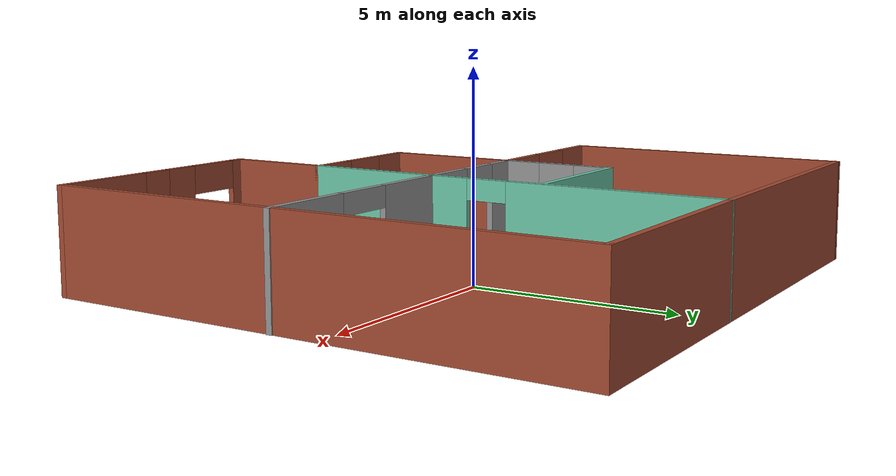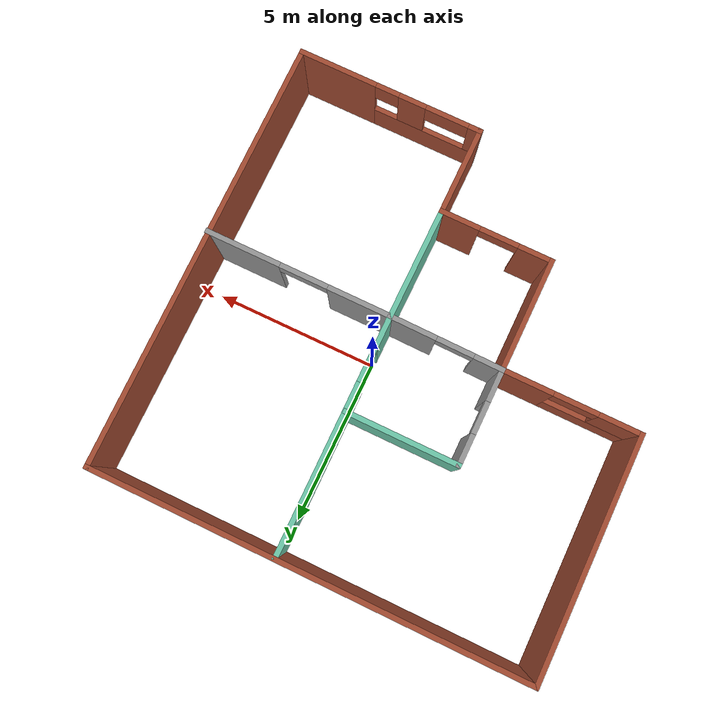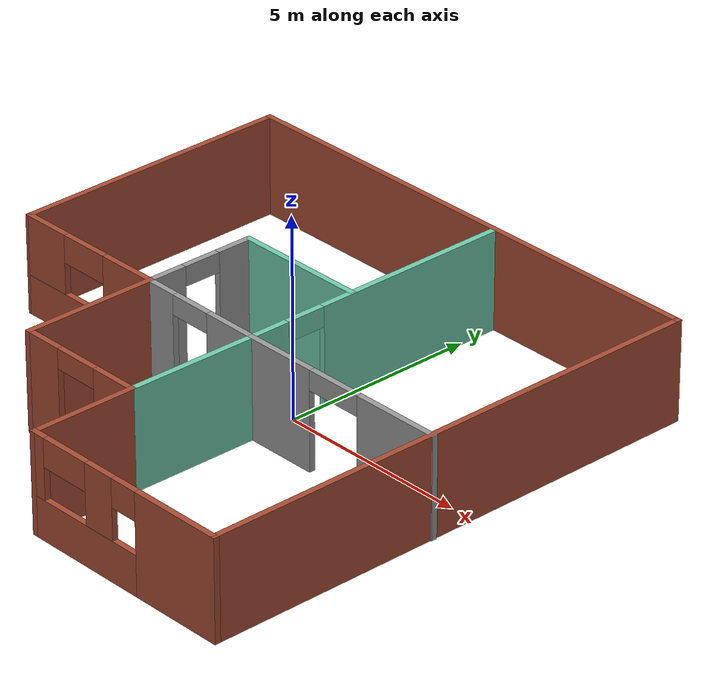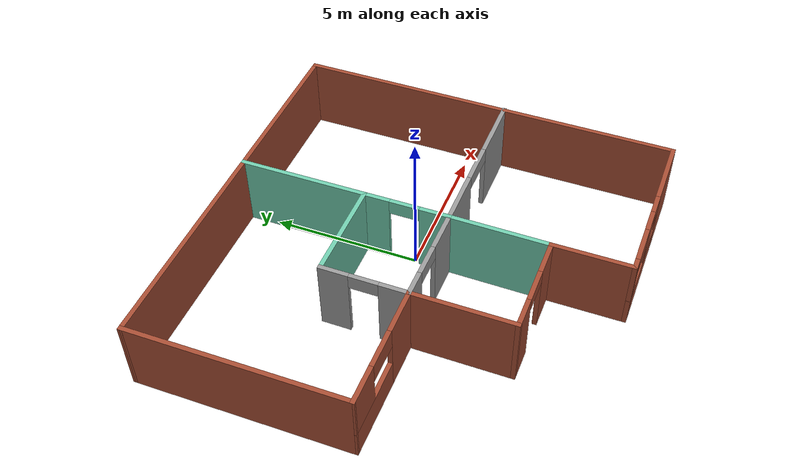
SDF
<?xml version='1.0'?>
<sdf version='1.6'>
  <model name='building_1floor'>
    <pose frame=''>-0.973705 -0.510274 0 0 -0 0</pose>
    <link name='Wall_0'>
      <collision name='Wall_0_Collision'>
        <geometry>
          <box>
            <size>13.25 0.15 2.5</size>
          </box>
        </geometry>
        <pose frame=''>0 0 1.25 0 -0 0</pose>
      </collision>
      <visual name='Wall_0_Visual'>
        <pose frame=''>0 0 1.25 0 -0 0</pose>
        <geometry>
          <box>
            <size>13.25 0.15 2.5</size>
          </box>
        </geometry>
        <material>
          <script>
            <uri>file://media/materials/scripts/gazebo.material</uri>
            <name>Gazebo/Bricks</name>
          </script>
          <ambient>1 1 1 1</ambient>
        </material>
        <meta>
          <layer>0</layer>
        </meta>
      </visual>
      <pose frame=''>-0.013373 6.54974 0 0 -0 0</pose>
    </link>
    <link name='Wall_1'>
      <collision name='Wall_1_Collision'>
        <geometry>
          <box>
            <size>13.25 0.15 2.5</size>
          </box>
        </geometry>
        <pose frame=''>0 0 1.25 0 -0 0</pose>
      </collision>
      <visual name='Wall_1_Visual'>
        <pose frame=''>0 0 1.25 0 -0 0</pose>
        <geometry>
          <box>
            <size>13.25 0.15 2.5</size>
          </box>
        </geometry>
        <material>
          <script>
            <uri>file://media/materials/scripts/gazebo.material</uri>
            <name>Gazebo/Bricks</name>
          </script>
          <ambient>1 1 1 1</ambient>
        </material>
        <meta>
          <layer>0</layer>
        </meta>
      </visual>
      <pose frame=''>6.53663 -0.000261 0 0 -0 -1.5708</pose>
    </link>
    <link name='Wall_11'>
      <pose frame=''>0.952525 2.95666 0 0 -0 -1.56763</pose>
      <visual name='Wall_11_Visual_0'>
        <pose frame=''>-1.04133 0 1.25 0 -0 0</pose>
        <geometry>
          <box>
            <size>5.25349 0.15 2.5</size>
          </box>
        </geometry>
        <material>
          <script>
            <uri>file://media/materials/scripts/gazebo.material</uri>
            <name>Gazebo/Grey</name>
          </script>
          <ambient>0.435294 0.796078 0.67451 1</ambient>
        </material>
        <meta>
          <layer>0</layer>
        </meta>
      </visual>
      <collision name='Wall_11_Collision_0'>
        <geometry>
          <box>
            <size>5.25349 0.15 2.5</size>
          </box>
        </geometry>
        <pose frame=''>-1.04133 0 1.25 0 -0 0</pose>
      </collision>
      <visual name='Wall_11_Visual_1'>
        <pose frame=''>3.13356 0 1.25 0 -0 0</pose>
        <geometry>
          <box>
            <size>1.06903 0.15 2.5</size>
          </box>
        </geometry>
        <material>
          <script>
            <uri>file://media/materials/scripts/gazebo.material</uri>
            <name>Gazebo/Grey</name>
          </script>
          <ambient>0.435294 0.796078 0.67451 1</ambient>
        </material>
        <meta>
          <layer>0</layer>
        </meta>
      </visual>
      <collision name='Wall_11_Collision_1'>
        <geometry>
          <box>
            <size>1.06903 0.15 2.5</size>
          </box>
        </geometry>
        <pose frame=''>3.13356 0 1.25 0 -0 0</pose>
      </collision>
      <visual name='Wall_11_Visual_2'>
        <pose frame=''>2.09223 0 2.25 0 -0 0</pose>
        <geometry>
          <box>
            <size>1.01363 0.15 0.5</size>
          </box>
        </geometry>
        <material>
          <script>
            <uri>file://media/materials/scripts/gazebo.material</uri>
            <name>Gazebo/Grey</name>
          </script>
          <ambient>0.435294 0.796078 0.67451 1</ambient>
        </material>
        <meta>
          <layer>0</layer>
        </meta>
      </visual>
      <collision name='Wall_11_Collision_2'>
        <geometry>
          <box>
            <size>1.01363 0.15 0.5</size>
          </box>
        </geometry>
        <pose frame=''>2.09223 0 2.25 0 -0 0</pose>
      </collision>
    </link>
    <link name='Wall_12'>
      <pose frame=''>-0.724738 -0.618338 0 0 -0 3.13089</pose>
      <visual name='Wall_12_Visual_0'>
        <pose frame=''>-1.02459 0 1.25 0 -0 0</pose>
        <geometry>
          <box>
            <size>1.47829 0.15 2.5</size>
          </box>
        </geometry>
        <material>
          <script>
            <uri>file://media/materials/scripts/gazebo.material</uri>
            <name>Gazebo/Grey</name>
          </script>
          <ambient>1 1 1 1</ambient>
        </material>
        <meta>
          <layer>0</layer>
        </meta>
      </visual>
      <collision name='Wall_12_Collision_0'>
        <geometry>
          <box>
            <size>1.47829 0.15 2.5</size>
          </box>
        </geometry>
        <pose frame=''>-1.02459 0 1.25 0 -0 0</pose>
      </collision>
      <visual name='Wall_12_Visual_1'>
        <pose frame=''>1.3026 0 1.25 0 -0 0</pose>
        <geometry>
          <box>
            <size>0.922267 0.15 2.5</size>
          </box>
        </geometry>
        <material>
          <script>
            <uri>file://media/materials/scripts/gazebo.material</uri>
            <name>Gazebo/Grey</name>
          </script>
          <ambient>1 1 1 1</ambient>
        </material>
        <meta>
          <layer>0</layer>
        </meta>
      </visual>
      <collision name='Wall_12_Collision_1'>
        <geometry>
          <box>
            <size>0.922267 0.15 2.5</size>
          </box>
        </geometry>
        <pose frame=''>1.3026 0 1.25 0 -0 0</pose>
      </collision>
      <visual name='Wall_12_Visual_2'>
        <pose frame=''>0.278009 0 2.25 0 -0 0</pose>
        <geometry>
          <box>
            <size>1.12691 0.15 0.5</size>
          </box>
        </geometry>
        <material>
          <script>
            <uri>file://media/materials/scripts/gazebo.material</uri>
            <name>Gazebo/Grey</name>
          </script>
          <ambient>1 1 1 1</ambient>
        </material>
        <meta>
          <layer>0</layer>
        </meta>
      </visual>
      <collision name='Wall_12_Collision_2'>
        <geometry>
          <box>
            <size>1.12691 0.15 0.5</size>
          </box>
        </geometry>
        <pose frame=''>0.278009 0 2.25 0 -0 0</pose>
      </collision>
    </link>
    <link name='Wall_13'>
      <pose frame=''>-2.41337 0.824739 0 0 -0 1.5708</pose>
      <visual name='Wall_13_Visual_0'>
        <pose frame=''>-0.98355 0 1.25 0 -0 0</pose>
        <geometry>
          <box>
            <size>1.0329 0.15 2.5</size>
          </box>
        </geometry>
        <material>
          <script>
            <uri>file://media/materials/scripts/gazebo.material</uri>
            <name>Gazebo/Grey</name>
          </script>
          <ambient>1 1 1 1</ambient>
        </material>
        <meta>
          <layer>0</layer>
        </meta>
      </visual>
      <collision name='Wall_13_Collision_0'>
        <geometry>
          <box>
            <size>1.0329 0.15 2.5</size>
          </box>
        </geometry>
        <pose frame=''>-0.98355 0 1.25 0 -0 0</pose>
      </collision>
      <visual name='Wall_13_Visual_1'>
        <pose frame=''>1.00056 0 1.25 0 -0 0</pose>
        <geometry>
          <box>
            <size>0.998878 0.15 2.5</size>
          </box>
        </geometry>
        <material>
          <script>
            <uri>file://media/materials/scripts/gazebo.material</uri>
            <name>Gazebo/Grey</name>
          </script>
          <ambient>1 1 1 1</ambient>
        </material>
        <meta>
          <layer>0</layer>
        </meta>
      </visual>
      <collision name='Wall_13_Collision_1'>
        <geometry>
          <box>
            <size>0.998878 0.15 2.5</size>
          </box>
        </geometry>
        <pose frame=''>1.00056 0 1.25 0 -0 0</pose>
      </collision>
      <visual name='Wall_13_Visual_2'>
        <pose frame=''>0.017011 0 2.25 0 -0 0</pose>
        <geometry>
          <box>
            <size>0.968223 0.15 0.5</size>
          </box>
        </geometry>
        <material>
          <script>
            <uri>file://media/materials/scripts/gazebo.material</uri>
            <name>Gazebo/Grey</name>
          </script>
          <ambient>1 1 1 1</ambient>
        </material>
        <meta>
          <layer>0</layer>
        </meta>
      </visual>
      <collision name='Wall_13_Collision_2'>
        <geometry>
          <box>
            <size>0.968223 0.15 0.5</size>
          </box>
        </geometry>
        <pose frame=''>0.017011 0 2.25 0 -0 0</pose>
      </collision>
    </link>
    <link name='Wall_14'>
      <collision name='Wall_14_Collision'>
        <geometry>
          <box>
            <size>3.5 0.15 2.5</size>
          </box>
        </geometry>
        <pose frame=''>0 0 1.25 0 -0 0</pose>
      </collision>
      <visual name='Wall_14_Visual'>
        <pose frame=''>0 0 1.25 0 -0 0</pose>
        <geometry>
          <box>
            <size>3.5 0.15 2.5</size>
          </box>
        </geometry>
        <material>
          <script>
            <uri>file://media/materials/scripts/gazebo.material</uri>
            <name>Gazebo/Grey</name>
          </script>
          <ambient>0.435294 0.796078 0.67451 1</ambient>
        </material>
        <meta>
          <layer>0</layer>
        </meta>
      </visual>
      <pose frame=''>-0.738373 2.24974 0 0 -0 0</pose>
    </link>
    <link name='Wall_16'>
      <collision name='Wall_16_Collision'>
        <geometry>
          <box>
            <size>3.46396 0.15 2.5</size>
          </box>
        </geometry>
        <pose frame=''>0 0 1.25 0 -0 0</pose>
      </collision>
      <visual name='Wall_16_Visual'>
        <pose frame=''>0 0 1.25 0 -0 0</pose>
        <geometry>
          <box>
            <size>3.46396 0.15 2.5</size>
          </box>
        </geometry>
        <material>
          <script>
            <uri>file://media/materials/scripts/gazebo.material</uri>
            <name>Gazebo/Grey</name>
          </script>
          <ambient>0.435294 0.796078 0.67451 1</ambient>
        </material>
        <meta>
          <layer>0</layer>
        </meta>
      </visual>
      <pose frame=''>0.950262 -2.29334 0 0 -0 -1.57902</pose>
    </link>
    <link name='Wall_18'>
      <pose frame=''>3.7639 -0.636415 0 0 -0 0</pose>
      <visual name='Wall_18_Visual_0'>
        <pose frame=''>-1.88565 0 1.25 0 -0 0</pose>
        <geometry>
          <box>
            <size>1.97869 0.15 2.5</size>
          </box>
        </geometry>
        <material>
          <script>
            <uri>file://media/materials/scripts/gazebo.material</uri>
            <name>Gazebo/Grey</name>
          </script>
          <ambient>1 1 1 1</ambient>
        </material>
        <meta>
          <layer>0</layer>
        </meta>
      </visual>
      <collision name='Wall_18_Collision_0'>
        <geometry>
          <box>
            <size>1.97869 0.15 2.5</size>
          </box>
        </geometry>
        <pose frame=''>-1.88565 0 1.25 0 -0 0</pose>
      </collision>
      <visual name='Wall_18_Visual_1'>
        <pose frame=''>1.72361 0 1.25 0 -0 0</pose>
        <geometry>
          <box>
            <size>2.30278 0.15 2.5</size>
          </box>
        </geometry>
        <material>
          <script>
            <uri>file://media/materials/scripts/gazebo.material</uri>
            <name>Gazebo/Grey</name>
          </script>
          <ambient>1 1 1 1</ambient>
        </material>
        <meta>
          <layer>0</layer>
        </meta>
      </visual>
      <collision name='Wall_18_Collision_1'>
        <geometry>
          <box>
            <size>2.30278 0.15 2.5</size>
          </box>
        </geometry>
        <pose frame=''>1.72361 0 1.25 0 -0 0</pose>
      </collision>
      <visual name='Wall_18_Visual_2'>
        <pose frame=''>-0.162045 0 2.25 0 -0 0</pose>
        <geometry>
          <box>
            <size>1.46853 0.15 0.5</size>
          </box>
        </geometry>
        <material>
          <script>
            <uri>file://media/materials/scripts/gazebo.material</uri>
            <name>Gazebo/Grey</name>
          </script>
          <ambient>1 1 1 1</ambient>
        </material>
        <meta>
          <layer>0</layer>
        </meta>
      </visual>
      <collision name='Wall_18_Collision_2'>
        <geometry>
          <box>
            <size>1.46853 0.15 0.5</size>
          </box>
        </geometry>
        <pose frame=''>-0.162045 0 2.25 0 -0 0</pose>
      </collision>
    </link>
    <link name='Wall_2'>
      <pose frame=''>3.73663 -6.55026 0 0 -0 3.14159</pose>
      <visual name='Wall_2_Visual_0'>
        <pose frame=''>-1.66113 0 1.25 0 -0 0</pose>
        <geometry>
          <box>
            <size>2.42774 0.15 2.5</size>
          </box>
        </geometry>
        <material>
          <script>
            <uri>file://media/materials/scripts/gazebo.material</uri>
            <name>Gazebo/Bricks</name>
          </script>
          <ambient>1 1 1 1</ambient>
        </material>
        <meta>
          <layer>0</layer>
        </meta>
      </visual>
      <collision name='Wall_2_Collision_0'>
        <geometry>
          <box>
            <size>2.42774 0.15 2.5</size>
          </box>
        </geometry>
        <pose frame=''>-1.66113 0 1.25 0 -0 0</pose>
      </collision>
      <visual name='Wall_2_Visual_1'>
        <pose frame=''>1.21387 0 0.5 0 -0 0</pose>
        <geometry>
          <box>
            <size>3.32226 0.15 1</size>
          </box>
        </geometry>
        <material>
          <script>
            <uri>file://media/materials/scripts/gazebo.material</uri>
            <name>Gazebo/Bricks</name>
          </script>
          <ambient>1 1 1 1</ambient>
        </material>
        <meta>
          <layer>0</layer>
        </meta>
      </visual>
      <collision name='Wall_2_Collision_1'>
        <geometry>
          <box>
            <size>3.32226 0.15 1</size>
          </box>
        </geometry>
        <pose frame=''>1.21387 0 0.5 0 -0 0</pose>
      </collision>
      <visual name='Wall_2_Visual_2'>
        <pose frame=''>0.703367 0 1.75 0 -0 0</pose>
        <geometry>
          <box>
            <size>0.837262 0.15 1.5</size>
          </box>
        </geometry>
        <material>
          <script>
            <uri>file://media/materials/scripts/gazebo.material</uri>
            <name>Gazebo/Bricks</name>
          </script>
          <ambient>1 1 1 1</ambient>
        </material>
        <meta>
          <layer>0</layer>
        </meta>
      </visual>
      <collision name='Wall_2_Collision_2'>
        <geometry>
          <box>
            <size>0.837262 0.15 1.5</size>
          </box>
        </geometry>
        <pose frame=''>0.703367 0 1.75 0 -0 0</pose>
      </collision>
      <visual name='Wall_2_Visual_3'>
        <pose frame=''>2.66 0 1.75 0 -0 0</pose>
        <geometry>
          <box>
            <size>0.430002 0.15 1.5</size>
          </box>
        </geometry>
        <material>
          <script>
            <uri>file://media/materials/scripts/gazebo.material</uri>
            <name>Gazebo/Bricks</name>
          </script>
          <ambient>1 1 1 1</ambient>
        </material>
        <meta>
          <layer>0</layer>
        </meta>
      </visual>
      <collision name='Wall_2_Collision_3'>
        <geometry>
          <box>
            <size>0.430002 0.15 1.5</size>
          </box>
        </geometry>
        <pose frame=''>2.66 0 1.75 0 -0 0</pose>
      </collision>
      <visual name='Wall_2_Visual_4'>
        <pose frame=''>-0.081263 0 2.15 0 -0 0</pose>
        <geometry>
          <box>
            <size>0.732 0.15 0.7</size>
          </box>
        </geometry>
        <material>
          <script>
            <uri>file://media/materials/scripts/gazebo.material</uri>
            <name>Gazebo/Bricks</name>
          </script>
          <ambient>1 1 1 1</ambient>
        </material>
        <meta>
          <layer>0</layer>
        </meta>
      </visual>
      <collision name='Wall_2_Collision_4'>
        <geometry>
          <box>
            <size>0.732 0.15 0.7</size>
          </box>
        </geometry>
        <pose frame=''>-0.081263 0 2.15 0 -0 0</pose>
      </collision>
      <visual name='Wall_2_Visual_5'>
        <pose frame=''>1.7835 0 2.15 0 -0 0</pose>
        <geometry>
          <box>
            <size>1.323 0.15 0.7</size>
          </box>
        </geometry>
        <material>
          <script>
            <uri>file://media/materials/scripts/gazebo.material</uri>
            <name>Gazebo/Bricks</name>
          </script>
          <ambient>1 1 1 1</ambient>
        </material>
        <meta>
          <layer>0</layer>
        </meta>
      </visual>
      <collision name='Wall_2_Collision_5'>
        <geometry>
          <box>
            <size>1.323 0.15 0.7</size>
          </box>
        </geometry>
        <pose frame=''>1.7835 0 2.15 0 -0 0</pose>
      </collision>
    </link>
    <link name='Wall_3'>
      <collision name='Wall_3_Collision'>
        <geometry>
          <box>
            <size>2.75 0.15 2.5</size>
          </box>
        </geometry>
        <pose frame=''>0 0 1.25 0 -0 0</pose>
      </collision>
      <visual name='Wall_3_Visual'>
        <pose frame=''>0 0 1.25 0 -0 0</pose>
        <geometry>
          <box>
            <size>2.75 0.15 2.5</size>
          </box>
        </geometry>
        <material>
          <script>
            <uri>file://media/materials/scripts/gazebo.material</uri>
            <name>Gazebo/Bricks</name>
          </script>
          <ambient>1 1 1 1</ambient>
        </material>
        <meta>
          <layer>0</layer>
        </meta>
      </visual>
      <pose frame=''>0.936627 -5.25026 0 0 -0 1.5708</pose>
    </link>
    <link name='Wall_4'>
      <pose frame=''>-0.738373 -3.95026 0 0 -0 3.14159</pose>
      <visual name='Wall_4_Visual_0'>
        <pose frame=''>-1.12677 0 1.25 0 -0 0</pose>
        <geometry>
          <box>
            <size>1.24645 0.15 2.5</size>
          </box>
        </geometry>
        <material>
          <script>
            <uri>file://media/materials/scripts/gazebo.material</uri>
            <name>Gazebo/Bricks</name>
          </script>
          <ambient>1 1 1 1</ambient>
        </material>
        <meta>
          <layer>0</layer>
        </meta>
      </visual>
      <collision name='Wall_4_Collision_0'>
        <geometry>
          <box>
            <size>1.24645 0.15 2.5</size>
          </box>
        </geometry>
        <pose frame=''>-1.12677 0 1.25 0 -0 0</pose>
      </collision>
      <visual name='Wall_4_Visual_1'>
        <pose frame=''>1.20967 0 1.25 0 -0 0</pose>
        <geometry>
          <box>
            <size>1.08065 0.15 2.5</size>
          </box>
        </geometry>
        <material>
          <script>
            <uri>file://media/materials/scripts/gazebo.material</uri>
            <name>Gazebo/Bricks</name>
          </script>
          <ambient>1 1 1 1</ambient>
        </material>
        <meta>
          <layer>0</layer>
        </meta>
      </visual>
      <collision name='Wall_4_Collision_1'>
        <geometry>
          <box>
            <size>1.08065 0.15 2.5</size>
          </box>
        </geometry>
        <pose frame=''>1.20967 0 1.25 0 -0 0</pose>
      </collision>
      <visual name='Wall_4_Visual_2'>
        <pose frame=''>0.082899 0 2.25 0 -0 0</pose>
        <geometry>
          <box>
            <size>1.17289 0.15 0.5</size>
          </box>
        </geometry>
        <material>
          <script>
            <uri>file://media/materials/scripts/gazebo.material</uri>
            <name>Gazebo/Bricks</name>
          </script>
          <ambient>1 1 1 1</ambient>
        </material>
        <meta>
          <layer>0</layer>
        </meta>
      </visual>
      <collision name='Wall_4_Collision_2'>
        <geometry>
          <box>
            <size>1.17289 0.15 0.5</size>
          </box>
        </geometry>
        <pose frame=''>0.082899 0 2.25 0 -0 0</pose>
      </collision>
    </link>
    <link name='Wall_5'>
      <collision name='Wall_5_Collision'>
        <geometry>
          <box>
            <size>3.5 0.15 2.5</size>
          </box>
        </geometry>
        <pose frame=''>0 0 1.25 0 -0 0</pose>
      </collision>
      <visual name='Wall_5_Visual'>
        <pose frame=''>0 0 1.25 0 -0 0</pose>
        <geometry>
          <box>
            <size>3.5 0.15 2.5</size>
          </box>
        </geometry>
        <material>
          <script>
            <uri>file://media/materials/scripts/gazebo.material</uri>
            <name>Gazebo/Bricks</name>
          </script>
          <ambient>1 1 1 1</ambient>
        </material>
        <meta>
          <layer>0</layer>
        </meta>
      </visual>
      <pose frame=''>-2.41337 -2.27526 0 0 -0 1.5708</pose>
    </link>
    <link name='Wall_6'>
      <pose frame=''>-4.46337 -0.600261 0 0 -0 3.14159</pose>
      <visual name='Wall_6_Visual_0'>
        <pose frame=''>-1.3268 0 1.25 0 -0 0</pose>
        <geometry>
          <box>
            <size>1.5964 0.15 2.5</size>
          </box>
        </geometry>
        <material>
          <script>
            <uri>file://media/materials/scripts/gazebo.material</uri>
            <name>Gazebo/Bricks</name>
          </script>
          <ambient>1 1 1 1</ambient>
        </material>
        <meta>
          <layer>0</layer>
        </meta>
      </visual>
      <collision name='Wall_6_Collision_0'>
        <geometry>
          <box>
            <size>1.5964 0.15 2.5</size>
          </box>
        </geometry>
        <pose frame=''>-1.3268 0 1.25 0 -0 0</pose>
      </collision>
      <visual name='Wall_6_Visual_1'>
        <pose frame=''>0.798202 0 0.5 0 -0 0</pose>
        <geometry>
          <box>
            <size>2.6536 0.15 1</size>
          </box>
        </geometry>
        <material>
          <script>
            <uri>file://media/materials/scripts/gazebo.material</uri>
            <name>Gazebo/Bricks</name>
          </script>
          <ambient>1 1 1 1</ambient>
        </material>
        <meta>
          <layer>0</layer>
        </meta>
      </visual>
      <collision name='Wall_6_Collision_1'>
        <geometry>
          <box>
            <size>2.6536 0.15 1</size>
          </box>
        </geometry>
        <pose frame=''>0.798202 0 0.5 0 -0 0</pose>
      </collision>
      <visual name='Wall_6_Visual_2'>
        <pose frame=''>1.4597 0 1.75 0 -0 0</pose>
        <geometry>
          <box>
            <size>1.3306 0.15 1.5</size>
          </box>
        </geometry>
        <material>
          <script>
            <uri>file://media/materials/scripts/gazebo.material</uri>
            <name>Gazebo/Bricks</name>
          </script>
          <ambient>1 1 1 1</ambient>
        </material>
        <meta>
          <layer>0</layer>
        </meta>
      </visual>
      <collision name='Wall_6_Collision_2'>
        <geometry>
          <box>
            <size>1.3306 0.15 1.5</size>
          </box>
        </geometry>
        <pose frame=''>1.4597 0 1.75 0 -0 0</pose>
      </collision>
      <visual name='Wall_6_Visual_3'>
        <pose frame=''>0.132904 0 2.15 0 -0 0</pose>
        <geometry>
          <box>
            <size>1.323 0.15 0.7</size>
          </box>
        </geometry>
        <material>
          <script>
            <uri>file://media/materials/scripts/gazebo.material</uri>
            <name>Gazebo/Bricks</name>
          </script>
          <ambient>1 1 1 1</ambient>
        </material>
        <meta>
          <layer>0</layer>
        </meta>
      </visual>
      <collision name='Wall_6_Collision_3'>
        <geometry>
          <box>
            <size>1.323 0.15 0.7</size>
          </box>
        </geometry>
        <pose frame=''>0.132904 0 2.15 0 -0 0</pose>
      </collision>
    </link>
    <link name='Wall_9'>
      <collision name='Wall_9_Collision'>
        <geometry>
          <box>
            <size>7.30018 0.15 2.5</size>
          </box>
        </geometry>
        <pose frame=''>0 0 1.25 0 -0 0</pose>
      </collision>
      <visual name='Wall_9_Visual'>
        <pose frame=''>0 0 1.25 0 -0 0</pose>
        <geometry>
          <box>
            <size>7.30018 0.15 2.5</size>
          </box>
        </geometry>
        <material>
          <script>
            <uri>file://media/materials/scripts/gazebo.material</uri>
            <name>Gazebo/Bricks</name>
          </script>
          <ambient>1 1 1 1</ambient>
        </material>
        <meta>
          <layer>0</layer>
        </meta>
      </visual>
      <pose frame=''>-6.53837 2.97474 0 0 -0 1.57779</pose>
    </link>
    <static>1</static>
  </model>
</sdf>
